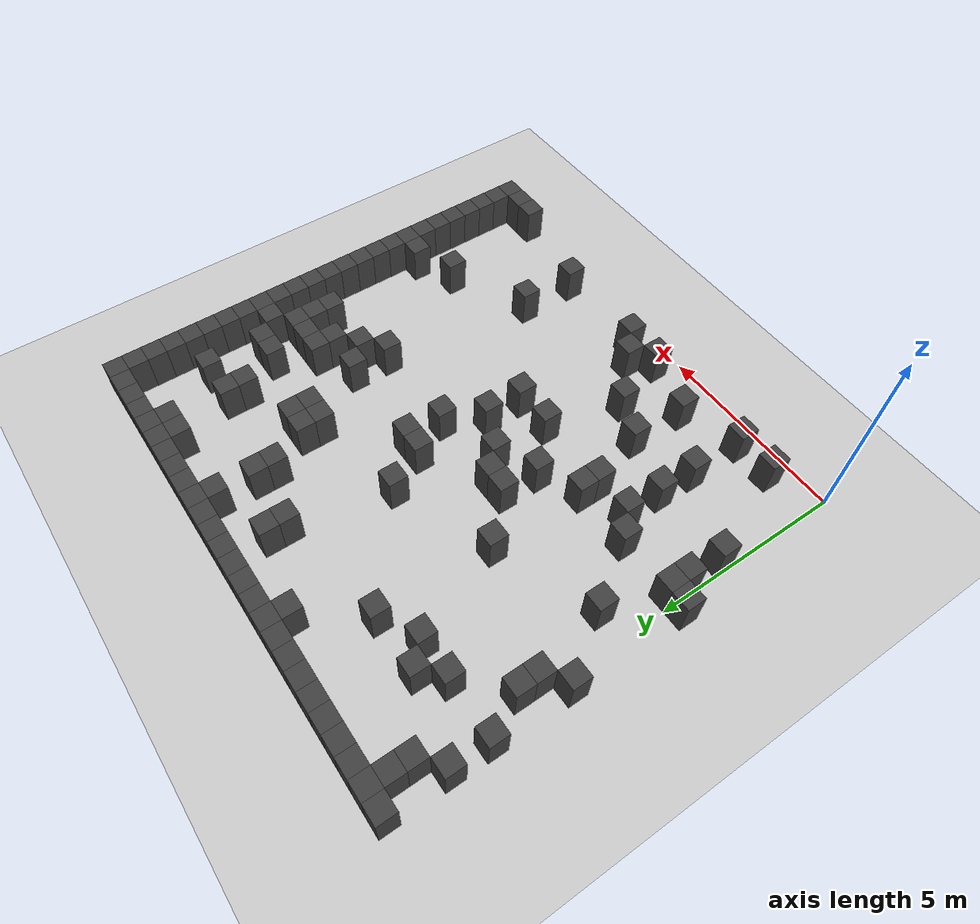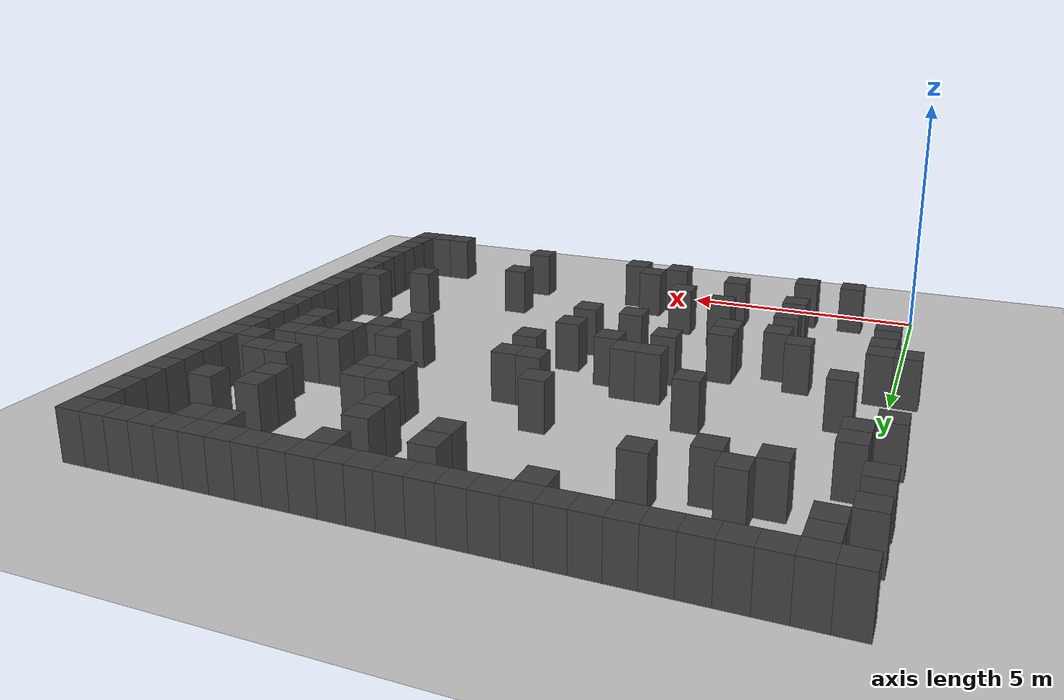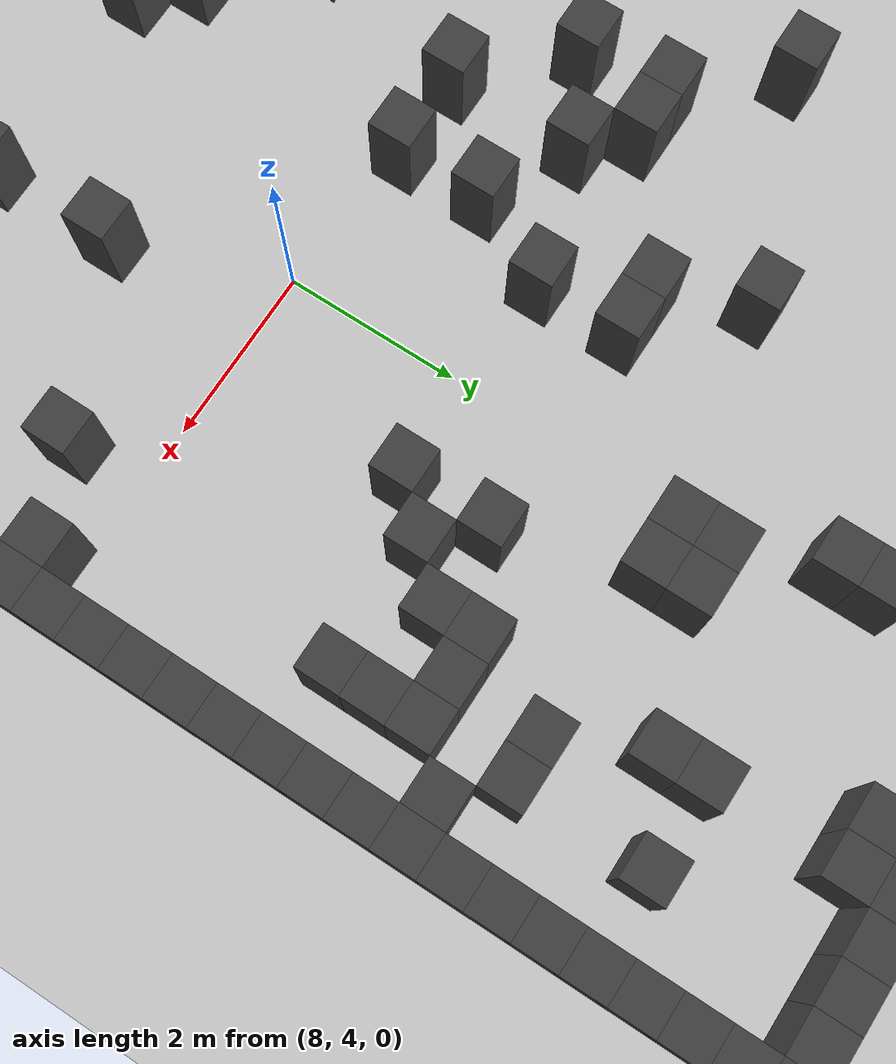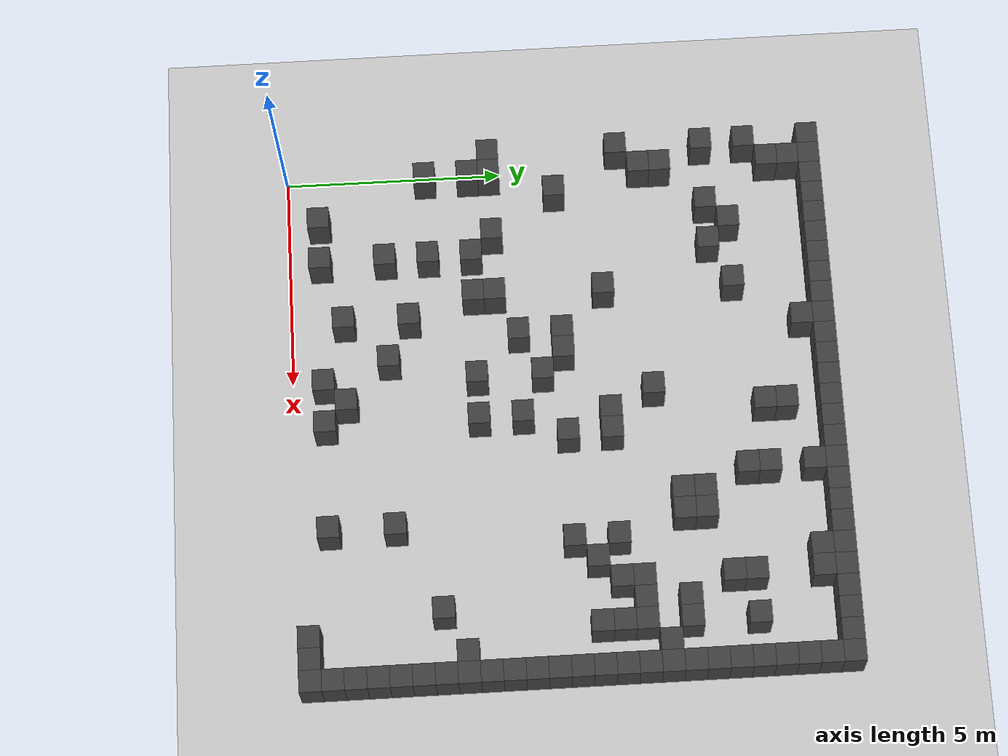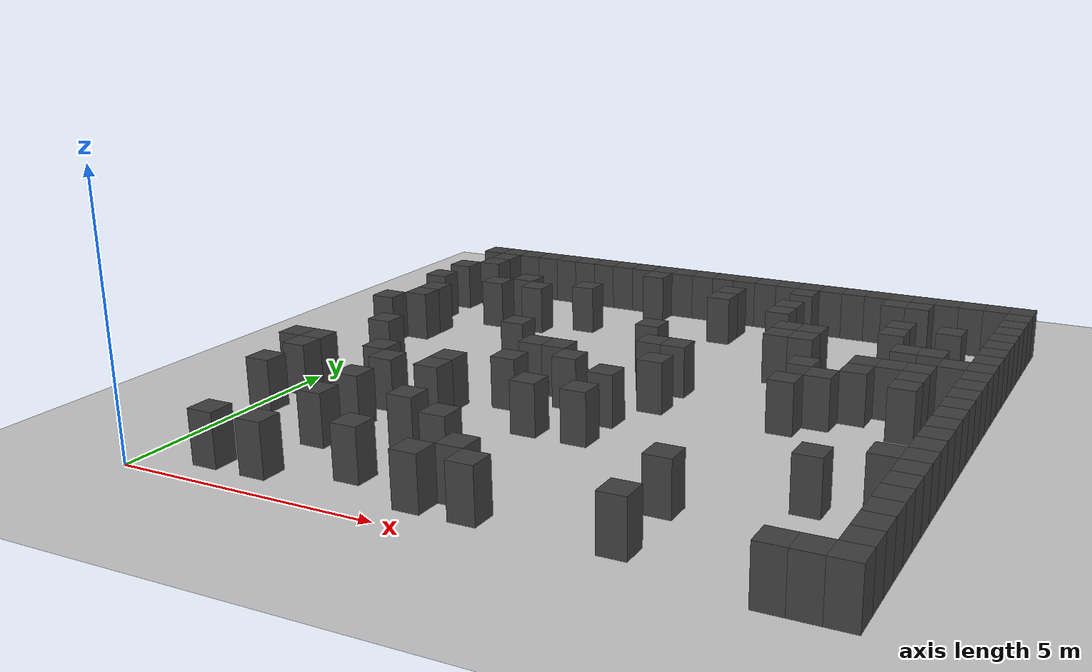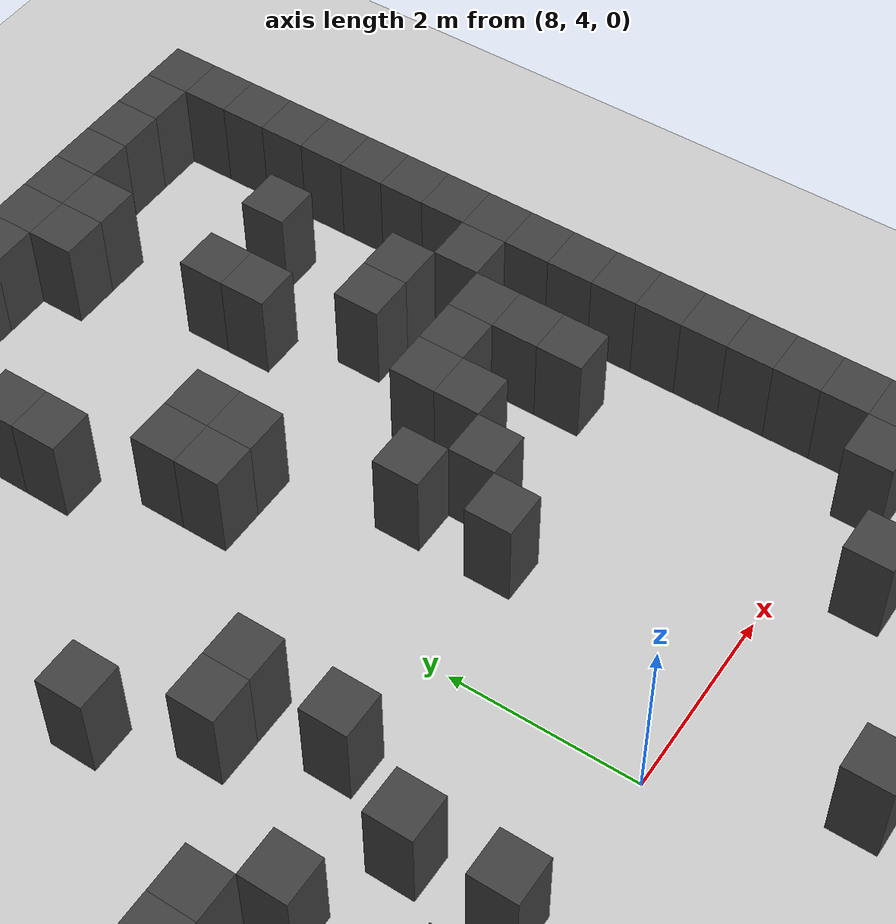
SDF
<sdf version="1.7">
 <world name="map_2523">
  <model name="ground_plane">
   <static>true</static>
   <link name="link">
    <collision name="collision">
     <geometry><plane><normal>0 0 1</normal><size>200 200</size></plane></geometry>
    </collision>
    <visual name="visual">
     <geometry><plane><normal>0 0 1</normal><size>200 200</size></plane></geometry>
     <material><ambient>0.8 0.8 0.8 1</ambient><diffuse>0.8 0.8 0.8 1</diffuse></material>
    </visual>
   </link>
  </model>
  <model name="maze_environment">
   <static>true</static>
   <link name="wall_24">
    <pose>-0.250 12.250 0.500 0 0 0</pose>
    <collision name="col"><geometry><box><size>0.5 0.5 1.0</size></box></geometry></collision>
    <visual name="vis">
     <geometry><box><size>0.5 0.5 1.0</size></box></geometry>
     <material><ambient>0.15 0.15 0.15 1</ambient><diffuse>0.25 0.25 0.25 1</diffuse></material>
    </visual>
   </link>
   <link name="wall_25">
    <pose>0.250 12.250 0.500 0 0 0</pose>
    <collision name="col"><geometry><box><size>0.5 0.5 1.0</size></box></geometry></collision>
    <visual name="vis">
     <geometry><box><size>0.5 0.5 1.0</size></box></geometry>
     <material><ambient>0.15 0.15 0.15 1</ambient><diffuse>0.25 0.25 0.25 1</diffuse></material>
    </visual>
   </link>
   <link name="wall_26">
    <pose>0.750 12.250 0.500 0 0 0</pose>
    <collision name="col"><geometry><box><size>0.5 0.5 1.0</size></box></geometry></collision>
    <visual name="vis">
     <geometry><box><size>0.5 0.5 1.0</size></box></geometry>
     <material><ambient>0.15 0.15 0.15 1</ambient><diffuse>0.25 0.25 0.25 1</diffuse></material>
    </visual>
   </link>
   <link name="wall_27">
    <pose>1.250 12.250 0.500 0 0 0</pose>
    <collision name="col"><geometry><box><size>0.5 0.5 1.0</size></box></geometry></collision>
    <visual name="vis">
     <geometry><box><size>0.5 0.5 1.0</size></box></geometry>
     <material><ambient>0.15 0.15 0.15 1</ambient><diffuse>0.25 0.25 0.25 1</diffuse></material>
    </visual>
   </link>
   <link name="wall_28">
    <pose>1.750 12.250 0.500 0 0 0</pose>
    <collision name="col"><geometry><box><size>0.5 0.5 1.0</size></box></geometry></collision>
    <visual name="vis">
     <geometry><box><size>0.5 0.5 1.0</size></box></geometry>
     <material><ambient>0.15 0.15 0.15 1</ambient><diffuse>0.25 0.25 0.25 1</diffuse></material>
    </visual>
   </link>
   <link name="wall_29">
    <pose>2.250 12.250 0.500 0 0 0</pose>
    <collision name="col"><geometry><box><size>0.5 0.5 1.0</size></box></geometry></collision>
    <visual name="vis">
     <geometry><box><size>0.5 0.5 1.0</size></box></geometry>
     <material><ambient>0.15 0.15 0.15 1</ambient><diffuse>0.25 0.25 0.25 1</diffuse></material>
    </visual>
   </link>
   <link name="wall_30">
    <pose>2.750 12.250 0.500 0 0 0</pose>
    <collision name="col"><geometry><box><size>0.5 0.5 1.0</size></box></geometry></collision>
    <visual name="vis">
     <geometry><box><size>0.5 0.5 1.0</size></box></geometry>
     <material><ambient>0.15 0.15 0.15 1</ambient><diffuse>0.25 0.25 0.25 1</diffuse></material>
    </visual>
   </link>
   <link name="wall_31">
    <pose>3.250 12.250 0.500 0 0 0</pose>
    <collision name="col"><geometry><box><size>0.5 0.5 1.0</size></box></geometry></collision>
    <visual name="vis">
     <geometry><box><size>0.5 0.5 1.0</size></box></geometry>
     <material><ambient>0.15 0.15 0.15 1</ambient><diffuse>0.25 0.25 0.25 1</diffuse></material>
    </visual>
   </link>
   <link name="wall_32">
    <pose>3.750 12.250 0.500 0 0 0</pose>
    <collision name="col"><geometry><box><size>0.5 0.5 1.0</size></box></geometry></collision>
    <visual name="vis">
     <geometry><box><size>0.5 0.5 1.0</size></box></geometry>
     <material><ambient>0.15 0.15 0.15 1</ambient><diffuse>0.25 0.25 0.25 1</diffuse></material>
    </visual>
   </link>
   <link name="wall_33">
    <pose>4.250 12.250 0.500 0 0 0</pose>
    <collision name="col"><geometry><box><size>0.5 0.5 1.0</size></box></geometry></collision>
    <visual name="vis">
     <geometry><box><size>0.5 0.5 1.0</size></box></geometry>
     <material><ambient>0.15 0.15 0.15 1</ambient><diffuse>0.25 0.25 0.25 1</diffuse></material>
    </visual>
   </link>
   <link name="wall_34">
    <pose>4.750 12.250 0.500 0 0 0</pose>
    <collision name="col"><geometry><box><size>0.5 0.5 1.0</size></box></geometry></collision>
    <visual name="vis">
     <geometry><box><size>0.5 0.5 1.0</size></box></geometry>
     <material><ambient>0.15 0.15 0.15 1</ambient><diffuse>0.25 0.25 0.25 1</diffuse></material>
    </visual>
   </link>
   <link name="wall_35">
    <pose>5.250 12.250 0.500 0 0 0</pose>
    <collision name="col"><geometry><box><size>0.5 0.5 1.0</size></box></geometry></collision>
    <visual name="vis">
     <geometry><box><size>0.5 0.5 1.0</size></box></geometry>
     <material><ambient>0.15 0.15 0.15 1</ambient><diffuse>0.25 0.25 0.25 1</diffuse></material>
    </visual>
   </link>
   <link name="wall_36">
    <pose>5.750 12.250 0.500 0 0 0</pose>
    <collision name="col"><geometry><box><size>0.5 0.5 1.0</size></box></geometry></collision>
    <visual name="vis">
     <geometry><box><size>0.5 0.5 1.0</size></box></geometry>
     <material><ambient>0.15 0.15 0.15 1</ambient><diffuse>0.25 0.25 0.25 1</diffuse></material>
    </visual>
   </link>
   <link name="wall_37">
    <pose>6.250 12.250 0.500 0 0 0</pose>
    <collision name="col"><geometry><box><size>0.5 0.5 1.0</size></box></geometry></collision>
    <visual name="vis">
     <geometry><box><size>0.5 0.5 1.0</size></box></geometry>
     <material><ambient>0.15 0.15 0.15 1</ambient><diffuse>0.25 0.25 0.25 1</diffuse></material>
    </visual>
   </link>
   <link name="wall_38">
    <pose>6.750 12.250 0.500 0 0 0</pose>
    <collision name="col"><geometry><box><size>0.5 0.5 1.0</size></box></geometry></collision>
    <visual name="vis">
     <geometry><box><size>0.5 0.5 1.0</size></box></geometry>
     <material><ambient>0.15 0.15 0.15 1</ambient><diffuse>0.25 0.25 0.25 1</diffuse></material>
    </visual>
   </link>
   <link name="wall_39">
    <pose>7.250 12.250 0.500 0 0 0</pose>
    <collision name="col"><geometry><box><size>0.5 0.5 1.0</size></box></geometry></collision>
    <visual name="vis">
     <geometry><box><size>0.5 0.5 1.0</size></box></geometry>
     <material><ambient>0.15 0.15 0.15 1</ambient><diffuse>0.25 0.25 0.25 1</diffuse></material>
    </visual>
   </link>
   <link name="wall_40">
    <pose>7.750 12.250 0.500 0 0 0</pose>
    <collision name="col"><geometry><box><size>0.5 0.5 1.0</size></box></geometry></collision>
    <visual name="vis">
     <geometry><box><size>0.5 0.5 1.0</size></box></geometry>
     <material><ambient>0.15 0.15 0.15 1</ambient><diffuse>0.25 0.25 0.25 1</diffuse></material>
    </visual>
   </link>
   <link name="wall_41">
    <pose>8.250 12.250 0.500 0 0 0</pose>
    <collision name="col"><geometry><box><size>0.5 0.5 1.0</size></box></geometry></collision>
    <visual name="vis">
     <geometry><box><size>0.5 0.5 1.0</size></box></geometry>
     <material><ambient>0.15 0.15 0.15 1</ambient><diffuse>0.25 0.25 0.25 1</diffuse></material>
    </visual>
   </link>
   <link name="wall_42">
    <pose>8.750 12.250 0.500 0 0 0</pose>
    <collision name="col"><geometry><box><size>0.5 0.5 1.0</size></box></geometry></collision>
    <visual name="vis">
     <geometry><box><size>0.5 0.5 1.0</size></box></geometry>
     <material><ambient>0.15 0.15 0.15 1</ambient><diffuse>0.25 0.25 0.25 1</diffuse></material>
    </visual>
   </link>
   <link name="wall_43">
    <pose>9.250 12.250 0.500 0 0 0</pose>
    <collision name="col"><geometry><box><size>0.5 0.5 1.0</size></box></geometry></collision>
    <visual name="vis">
     <geometry><box><size>0.5 0.5 1.0</size></box></geometry>
     <material><ambient>0.15 0.15 0.15 1</ambient><diffuse>0.25 0.25 0.25 1</diffuse></material>
    </visual>
   </link>
   <link name="wall_44">
    <pose>9.750 12.250 0.500 0 0 0</pose>
    <collision name="col"><geometry><box><size>0.5 0.5 1.0</size></box></geometry></collision>
    <visual name="vis">
     <geometry><box><size>0.5 0.5 1.0</size></box></geometry>
     <material><ambient>0.15 0.15 0.15 1</ambient><diffuse>0.25 0.25 0.25 1</diffuse></material>
    </visual>
   </link>
   <link name="wall_45">
    <pose>10.250 12.250 0.500 0 0 0</pose>
    <collision name="col"><geometry><box><size>0.5 0.5 1.0</size></box></geometry></collision>
    <visual name="vis">
     <geometry><box><size>0.5 0.5 1.0</size></box></geometry>
     <material><ambient>0.15 0.15 0.15 1</ambient><diffuse>0.25 0.25 0.25 1</diffuse></material>
    </visual>
   </link>
   <link name="wall_46">
    <pose>10.750 12.250 0.500 0 0 0</pose>
    <collision name="col"><geometry><box><size>0.5 0.5 1.0</size></box></geometry></collision>
    <visual name="vis">
     <geometry><box><size>0.5 0.5 1.0</size></box></geometry>
     <material><ambient>0.15 0.15 0.15 1</ambient><diffuse>0.25 0.25 0.25 1</diffuse></material>
    </visual>
   </link>
   <link name="wall_47">
    <pose>11.250 12.250 0.500 0 0 0</pose>
    <collision name="col"><geometry><box><size>0.5 0.5 1.0</size></box></geometry></collision>
    <visual name="vis">
     <geometry><box><size>0.5 0.5 1.0</size></box></geometry>
     <material><ambient>0.15 0.15 0.15 1</ambient><diffuse>0.25 0.25 0.25 1</diffuse></material>
    </visual>
   </link>
   <link name="wall_48">
    <pose>11.750 12.250 0.500 0 0 0</pose>
    <collision name="col"><geometry><box><size>0.5 0.5 1.0</size></box></geometry></collision>
    <visual name="vis">
     <geometry><box><size>0.5 0.5 1.0</size></box></geometry>
     <material><ambient>0.15 0.15 0.15 1</ambient><diffuse>0.25 0.25 0.25 1</diffuse></material>
    </visual>
   </link>
   <link name="wall_49">
    <pose>12.250 12.250 0.500 0 0 0</pose>
    <collision name="col"><geometry><box><size>0.5 0.5 1.0</size></box></geometry></collision>
    <visual name="vis">
     <geometry><box><size>0.5 0.5 1.0</size></box></geometry>
     <material><ambient>0.15 0.15 0.15 1</ambient><diffuse>0.25 0.25 0.25 1</diffuse></material>
    </visual>
   </link>
   <link name="wall_53">
    <pose>0.250 11.750 0.500 0 0 0</pose>
    <collision name="col"><geometry><box><size>0.5 0.5 1.0</size></box></geometry></collision>
    <visual name="vis">
     <geometry><box><size>0.5 0.5 1.0</size></box></geometry>
     <material><ambient>0.15 0.15 0.15 1</ambient><diffuse>0.25 0.25 0.25 1</diffuse></material>
    </visual>
   </link>
   <link name="wall_54">
    <pose>4.250 11.750 0.500 0 0 0</pose>
    <collision name="col"><geometry><box><size>0.5 0.5 1.0</size></box></geometry></collision>
    <visual name="vis">
     <geometry><box><size>0.5 0.5 1.0</size></box></geometry>
     <material><ambient>0.15 0.15 0.15 1</ambient><diffuse>0.25 0.25 0.25 1</diffuse></material>
    </visual>
   </link>
   <link name="wall_55">
    <pose>7.750 11.750 0.500 0 0 0</pose>
    <collision name="col"><geometry><box><size>0.5 0.5 1.0</size></box></geometry></collision>
    <visual name="vis">
     <geometry><box><size>0.5 0.5 1.0</size></box></geometry>
     <material><ambient>0.15 0.15 0.15 1</ambient><diffuse>0.25 0.25 0.25 1</diffuse></material>
    </visual>
   </link>
   <link name="wall_56">
    <pose>9.750 11.750 0.500 0 0 0</pose>
    <collision name="col"><geometry><box><size>0.5 0.5 1.0</size></box></geometry></collision>
    <visual name="vis">
     <geometry><box><size>0.5 0.5 1.0</size></box></geometry>
     <material><ambient>0.15 0.15 0.15 1</ambient><diffuse>0.25 0.25 0.25 1</diffuse></material>
    </visual>
   </link>
   <link name="wall_57">
    <pose>10.250 11.750 0.500 0 0 0</pose>
    <collision name="col"><geometry><box><size>0.5 0.5 1.0</size></box></geometry></collision>
    <visual name="vis">
     <geometry><box><size>0.5 0.5 1.0</size></box></geometry>
     <material><ambient>0.15 0.15 0.15 1</ambient><diffuse>0.25 0.25 0.25 1</diffuse></material>
    </visual>
   </link>
   <link name="wall_58">
    <pose>12.250 11.750 0.500 0 0 0</pose>
    <collision name="col"><geometry><box><size>0.5 0.5 1.0</size></box></geometry></collision>
    <visual name="vis">
     <geometry><box><size>0.5 0.5 1.0</size></box></geometry>
     <material><ambient>0.15 0.15 0.15 1</ambient><diffuse>0.25 0.25 0.25 1</diffuse></material>
    </visual>
   </link>
   <link name="wall_63">
    <pose>0.250 11.250 0.500 0 0 0</pose>
    <collision name="col"><geometry><box><size>0.5 0.5 1.0</size></box></geometry></collision>
    <visual name="vis">
     <geometry><box><size>0.5 0.5 1.0</size></box></geometry>
     <material><ambient>0.15 0.15 0.15 1</ambient><diffuse>0.25 0.25 0.25 1</diffuse></material>
    </visual>
   </link>
   <link name="wall_64">
    <pose>6.250 11.250 0.500 0 0 0</pose>
    <collision name="col"><geometry><box><size>0.5 0.5 1.0</size></box></geometry></collision>
    <visual name="vis">
     <geometry><box><size>0.5 0.5 1.0</size></box></geometry>
     <material><ambient>0.15 0.15 0.15 1</ambient><diffuse>0.25 0.25 0.25 1</diffuse></material>
    </visual>
   </link>
   <link name="wall_65">
    <pose>12.250 11.250 0.500 0 0 0</pose>
    <collision name="col"><geometry><box><size>0.5 0.5 1.0</size></box></geometry></collision>
    <visual name="vis">
     <geometry><box><size>0.5 0.5 1.0</size></box></geometry>
     <material><ambient>0.15 0.15 0.15 1</ambient><diffuse>0.25 0.25 0.25 1</diffuse></material>
    </visual>
   </link>
   <link name="wall_70">
    <pose>-0.250 10.750 0.500 0 0 0</pose>
    <collision name="col"><geometry><box><size>0.5 0.5 1.0</size></box></geometry></collision>
    <visual name="vis">
     <geometry><box><size>0.5 0.5 1.0</size></box></geometry>
     <material><ambient>0.15 0.15 0.15 1</ambient><diffuse>0.25 0.25 0.25 1</diffuse></material>
    </visual>
   </link>
   <link name="wall_71">
    <pose>6.250 10.750 0.500 0 0 0</pose>
    <collision name="col"><geometry><box><size>0.5 0.5 1.0</size></box></geometry></collision>
    <visual name="vis">
     <geometry><box><size>0.5 0.5 1.0</size></box></geometry>
     <material><ambient>0.15 0.15 0.15 1</ambient><diffuse>0.25 0.25 0.25 1</diffuse></material>
    </visual>
   </link>
   <link name="wall_72">
    <pose>7.750 10.750 0.500 0 0 0</pose>
    <collision name="col"><geometry><box><size>0.5 0.5 1.0</size></box></geometry></collision>
    <visual name="vis">
     <geometry><box><size>0.5 0.5 1.0</size></box></geometry>
     <material><ambient>0.15 0.15 0.15 1</ambient><diffuse>0.25 0.25 0.25 1</diffuse></material>
    </visual>
   </link>
   <link name="wall_73">
    <pose>12.250 10.750 0.500 0 0 0</pose>
    <collision name="col"><geometry><box><size>0.5 0.5 1.0</size></box></geometry></collision>
    <visual name="vis">
     <geometry><box><size>0.5 0.5 1.0</size></box></geometry>
     <material><ambient>0.15 0.15 0.15 1</ambient><diffuse>0.25 0.25 0.25 1</diffuse></material>
    </visual>
   </link>
   <link name="wall_76">
    <pose>1.750 10.250 0.500 0 0 0</pose>
    <collision name="col"><geometry><box><size>0.5 0.5 1.0</size></box></geometry></collision>
    <visual name="vis">
     <geometry><box><size>0.5 0.5 1.0</size></box></geometry>
     <material><ambient>0.15 0.15 0.15 1</ambient><diffuse>0.25 0.25 0.25 1</diffuse></material>
    </visual>
   </link>
   <link name="wall_77">
    <pose>3.250 10.250 0.500 0 0 0</pose>
    <collision name="col"><geometry><box><size>0.5 0.5 1.0</size></box></geometry></collision>
    <visual name="vis">
     <geometry><box><size>0.5 0.5 1.0</size></box></geometry>
     <material><ambient>0.15 0.15 0.15 1</ambient><diffuse>0.25 0.25 0.25 1</diffuse></material>
    </visual>
   </link>
   <link name="wall_78">
    <pose>7.750 10.250 0.500 0 0 0</pose>
    <collision name="col"><geometry><box><size>0.5 0.5 1.0</size></box></geometry></collision>
    <visual name="vis">
     <geometry><box><size>0.5 0.5 1.0</size></box></geometry>
     <material><ambient>0.15 0.15 0.15 1</ambient><diffuse>0.25 0.25 0.25 1</diffuse></material>
    </visual>
   </link>
   <link name="wall_79">
    <pose>10.250 10.250 0.500 0 0 0</pose>
    <collision name="col"><geometry><box><size>0.5 0.5 1.0</size></box></geometry></collision>
    <visual name="vis">
     <geometry><box><size>0.5 0.5 1.0</size></box></geometry>
     <material><ambient>0.15 0.15 0.15 1</ambient><diffuse>0.25 0.25 0.25 1</diffuse></material>
    </visual>
   </link>
   <link name="wall_80">
    <pose>11.250 10.250 0.500 0 0 0</pose>
    <collision name="col"><geometry><box><size>0.5 0.5 1.0</size></box></geometry></collision>
    <visual name="vis">
     <geometry><box><size>0.5 0.5 1.0</size></box></geometry>
     <material><ambient>0.15 0.15 0.15 1</ambient><diffuse>0.25 0.25 0.25 1</diffuse></material>
    </visual>
   </link>
   <link name="wall_81">
    <pose>12.250 10.250 0.500 0 0 0</pose>
    <collision name="col"><geometry><box><size>0.5 0.5 1.0</size></box></geometry></collision>
    <visual name="vis">
     <geometry><box><size>0.5 0.5 1.0</size></box></geometry>
     <material><ambient>0.15 0.15 0.15 1</ambient><diffuse>0.25 0.25 0.25 1</diffuse></material>
    </visual>
   </link>
   <link name="wall_86">
    <pose>-0.250 9.750 0.500 0 0 0</pose>
    <collision name="col"><geometry><box><size>0.5 0.5 1.0</size></box></geometry></collision>
    <visual name="vis">
     <geometry><box><size>0.5 0.5 1.0</size></box></geometry>
     <material><ambient>0.15 0.15 0.15 1</ambient><diffuse>0.25 0.25 0.25 1</diffuse></material>
    </visual>
   </link>
   <link name="wall_87">
    <pose>1.250 9.750 0.500 0 0 0</pose>
    <collision name="col"><geometry><box><size>0.5 0.5 1.0</size></box></geometry></collision>
    <visual name="vis">
     <geometry><box><size>0.5 0.5 1.0</size></box></geometry>
     <material><ambient>0.15 0.15 0.15 1</ambient><diffuse>0.25 0.25 0.25 1</diffuse></material>
    </visual>
   </link>
   <link name="wall_88">
    <pose>2.250 9.750 0.500 0 0 0</pose>
    <collision name="col"><geometry><box><size>0.5 0.5 1.0</size></box></geometry></collision>
    <visual name="vis">
     <geometry><box><size>0.5 0.5 1.0</size></box></geometry>
     <material><ambient>0.15 0.15 0.15 1</ambient><diffuse>0.25 0.25 0.25 1</diffuse></material>
    </visual>
   </link>
   <link name="wall_89">
    <pose>10.250 9.750 0.500 0 0 0</pose>
    <collision name="col"><geometry><box><size>0.5 0.5 1.0</size></box></geometry></collision>
    <visual name="vis">
     <geometry><box><size>0.5 0.5 1.0</size></box></geometry>
     <material><ambient>0.15 0.15 0.15 1</ambient><diffuse>0.25 0.25 0.25 1</diffuse></material>
    </visual>
   </link>
   <link name="wall_90">
    <pose>12.250 9.750 0.500 0 0 0</pose>
    <collision name="col"><geometry><box><size>0.5 0.5 1.0</size></box></geometry></collision>
    <visual name="vis">
     <geometry><box><size>0.5 0.5 1.0</size></box></geometry>
     <material><ambient>0.15 0.15 0.15 1</ambient><diffuse>0.25 0.25 0.25 1</diffuse></material>
    </visual>
   </link>
   <link name="wall_98">
    <pose>8.250 9.250 0.500 0 0 0</pose>
    <collision name="col"><geometry><box><size>0.5 0.5 1.0</size></box></geometry></collision>
    <visual name="vis">
     <geometry><box><size>0.5 0.5 1.0</size></box></geometry>
     <material><ambient>0.15 0.15 0.15 1</ambient><diffuse>0.25 0.25 0.25 1</diffuse></material>
    </visual>
   </link>
   <link name="wall_99">
    <pose>8.750 9.250 0.500 0 0 0</pose>
    <collision name="col"><geometry><box><size>0.5 0.5 1.0</size></box></geometry></collision>
    <visual name="vis">
     <geometry><box><size>0.5 0.5 1.0</size></box></geometry>
     <material><ambient>0.15 0.15 0.15 1</ambient><diffuse>0.25 0.25 0.25 1</diffuse></material>
    </visual>
   </link>
   <link name="wall_100">
    <pose>12.250 9.250 0.500 0 0 0</pose>
    <collision name="col"><geometry><box><size>0.5 0.5 1.0</size></box></geometry></collision>
    <visual name="vis">
     <geometry><box><size>0.5 0.5 1.0</size></box></geometry>
     <material><ambient>0.15 0.15 0.15 1</ambient><diffuse>0.25 0.25 0.25 1</diffuse></material>
    </visual>
   </link>
   <link name="wall_105">
    <pose>0.250 8.750 0.500 0 0 0</pose>
    <collision name="col"><geometry><box><size>0.5 0.5 1.0</size></box></geometry></collision>
    <visual name="vis">
     <geometry><box><size>0.5 0.5 1.0</size></box></geometry>
     <material><ambient>0.15 0.15 0.15 1</ambient><diffuse>0.25 0.25 0.25 1</diffuse></material>
    </visual>
   </link>
   <link name="wall_106">
    <pose>8.250 8.750 0.500 0 0 0</pose>
    <collision name="col"><geometry><box><size>0.5 0.5 1.0</size></box></geometry></collision>
    <visual name="vis">
     <geometry><box><size>0.5 0.5 1.0</size></box></geometry>
     <material><ambient>0.15 0.15 0.15 1</ambient><diffuse>0.25 0.25 0.25 1</diffuse></material>
    </visual>
   </link>
   <link name="wall_107">
    <pose>8.750 8.750 0.500 0 0 0</pose>
    <collision name="col"><geometry><box><size>0.5 0.5 1.0</size></box></geometry></collision>
    <visual name="vis">
     <geometry><box><size>0.5 0.5 1.0</size></box></geometry>
     <material><ambient>0.15 0.15 0.15 1</ambient><diffuse>0.25 0.25 0.25 1</diffuse></material>
    </visual>
   </link>
   <link name="wall_108">
    <pose>10.750 8.750 0.500 0 0 0</pose>
    <collision name="col"><geometry><box><size>0.5 0.5 1.0</size></box></geometry></collision>
    <visual name="vis">
     <geometry><box><size>0.5 0.5 1.0</size></box></geometry>
     <material><ambient>0.15 0.15 0.15 1</ambient><diffuse>0.25 0.25 0.25 1</diffuse></material>
    </visual>
   </link>
   <link name="wall_109">
    <pose>11.250 8.750 0.500 0 0 0</pose>
    <collision name="col"><geometry><box><size>0.5 0.5 1.0</size></box></geometry></collision>
    <visual name="vis">
     <geometry><box><size>0.5 0.5 1.0</size></box></geometry>
     <material><ambient>0.15 0.15 0.15 1</ambient><diffuse>0.25 0.25 0.25 1</diffuse></material>
    </visual>
   </link>
   <link name="wall_110">
    <pose>12.250 8.750 0.500 0 0 0</pose>
    <collision name="col"><geometry><box><size>0.5 0.5 1.0</size></box></geometry></collision>
    <visual name="vis">
     <geometry><box><size>0.5 0.5 1.0</size></box></geometry>
     <material><ambient>0.15 0.15 0.15 1</ambient><diffuse>0.25 0.25 0.25 1</diffuse></material>
    </visual>
   </link>
   <link name="wall_114">
    <pose>0.250 8.250 0.500 0 0 0</pose>
    <collision name="col"><geometry><box><size>0.5 0.5 1.0</size></box></geometry></collision>
    <visual name="vis">
     <geometry><box><size>0.5 0.5 1.0</size></box></geometry>
     <material><ambient>0.15 0.15 0.15 1</ambient><diffuse>0.25 0.25 0.25 1</diffuse></material>
    </visual>
   </link>
   <link name="wall_115">
    <pose>5.750 8.250 0.500 0 0 0</pose>
    <collision name="col"><geometry><box><size>0.5 0.5 1.0</size></box></geometry></collision>
    <visual name="vis">
     <geometry><box><size>0.5 0.5 1.0</size></box></geometry>
     <material><ambient>0.15 0.15 0.15 1</ambient><diffuse>0.25 0.25 0.25 1</diffuse></material>
    </visual>
   </link>
   <link name="wall_116">
    <pose>11.750 8.250 0.500 0 0 0</pose>
    <collision name="col"><geometry><box><size>0.5 0.5 1.0</size></box></geometry></collision>
    <visual name="vis">
     <geometry><box><size>0.5 0.5 1.0</size></box></geometry>
     <material><ambient>0.15 0.15 0.15 1</ambient><diffuse>0.25 0.25 0.25 1</diffuse></material>
    </visual>
   </link>
   <link name="wall_117">
    <pose>12.250 8.250 0.500 0 0 0</pose>
    <collision name="col"><geometry><box><size>0.5 0.5 1.0</size></box></geometry></collision>
    <visual name="vis">
     <geometry><box><size>0.5 0.5 1.0</size></box></geometry>
     <material><ambient>0.15 0.15 0.15 1</ambient><diffuse>0.25 0.25 0.25 1</diffuse></material>
    </visual>
   </link>
   <link name="wall_124">
    <pose>-0.250 7.750 0.500 0 0 0</pose>
    <collision name="col"><geometry><box><size>0.5 0.5 1.0</size></box></geometry></collision>
    <visual name="vis">
     <geometry><box><size>0.5 0.5 1.0</size></box></geometry>
     <material><ambient>0.15 0.15 0.15 1</ambient><diffuse>0.25 0.25 0.25 1</diffuse></material>
    </visual>
   </link>
   <link name="wall_125">
    <pose>10.250 7.750 0.500 0 0 0</pose>
    <collision name="col"><geometry><box><size>0.5 0.5 1.0</size></box></geometry></collision>
    <visual name="vis">
     <geometry><box><size>0.5 0.5 1.0</size></box></geometry>
     <material><ambient>0.15 0.15 0.15 1</ambient><diffuse>0.25 0.25 0.25 1</diffuse></material>
    </visual>
   </link>
   <link name="wall_126">
    <pose>10.750 7.750 0.500 0 0 0</pose>
    <collision name="col"><geometry><box><size>0.5 0.5 1.0</size></box></geometry></collision>
    <visual name="vis">
     <geometry><box><size>0.5 0.5 1.0</size></box></geometry>
     <material><ambient>0.15 0.15 0.15 1</ambient><diffuse>0.25 0.25 0.25 1</diffuse></material>
    </visual>
   </link>
   <link name="wall_127">
    <pose>11.250 7.750 0.500 0 0 0</pose>
    <collision name="col"><geometry><box><size>0.5 0.5 1.0</size></box></geometry></collision>
    <visual name="vis">
     <geometry><box><size>0.5 0.5 1.0</size></box></geometry>
     <material><ambient>0.15 0.15 0.15 1</ambient><diffuse>0.25 0.25 0.25 1</diffuse></material>
    </visual>
   </link>
   <link name="wall_128">
    <pose>12.250 7.750 0.500 0 0 0</pose>
    <collision name="col"><geometry><box><size>0.5 0.5 1.0</size></box></geometry></collision>
    <visual name="vis">
     <geometry><box><size>0.5 0.5 1.0</size></box></geometry>
     <material><ambient>0.15 0.15 0.15 1</ambient><diffuse>0.25 0.25 0.25 1</diffuse></material>
    </visual>
   </link>
   <link name="wall_131">
    <pose>3.250 7.250 0.500 0 0 0</pose>
    <collision name="col"><geometry><box><size>0.5 0.5 1.0</size></box></geometry></collision>
    <visual name="vis">
     <geometry><box><size>0.5 0.5 1.0</size></box></geometry>
     <material><ambient>0.15 0.15 0.15 1</ambient><diffuse>0.25 0.25 0.25 1</diffuse></material>
    </visual>
   </link>
   <link name="wall_132">
    <pose>6.250 7.250 0.500 0 0 0</pose>
    <collision name="col"><geometry><box><size>0.5 0.5 1.0</size></box></geometry></collision>
    <visual name="vis">
     <geometry><box><size>0.5 0.5 1.0</size></box></geometry>
     <material><ambient>0.15 0.15 0.15 1</ambient><diffuse>0.25 0.25 0.25 1</diffuse></material>
    </visual>
   </link>
   <link name="wall_133">
    <pose>6.750 7.250 0.500 0 0 0</pose>
    <collision name="col"><geometry><box><size>0.5 0.5 1.0</size></box></geometry></collision>
    <visual name="vis">
     <geometry><box><size>0.5 0.5 1.0</size></box></geometry>
     <material><ambient>0.15 0.15 0.15 1</ambient><diffuse>0.25 0.25 0.25 1</diffuse></material>
    </visual>
   </link>
   <link name="wall_134">
    <pose>9.250 7.250 0.500 0 0 0</pose>
    <collision name="col"><geometry><box><size>0.5 0.5 1.0</size></box></geometry></collision>
    <visual name="vis">
     <geometry><box><size>0.5 0.5 1.0</size></box></geometry>
     <material><ambient>0.15 0.15 0.15 1</ambient><diffuse>0.25 0.25 0.25 1</diffuse></material>
    </visual>
   </link>
   <link name="wall_135">
    <pose>10.250 7.250 0.500 0 0 0</pose>
    <collision name="col"><geometry><box><size>0.5 0.5 1.0</size></box></geometry></collision>
    <visual name="vis">
     <geometry><box><size>0.5 0.5 1.0</size></box></geometry>
     <material><ambient>0.15 0.15 0.15 1</ambient><diffuse>0.25 0.25 0.25 1</diffuse></material>
    </visual>
   </link>
   <link name="wall_136">
    <pose>11.250 7.250 0.500 0 0 0</pose>
    <collision name="col"><geometry><box><size>0.5 0.5 1.0</size></box></geometry></collision>
    <visual name="vis">
     <geometry><box><size>0.5 0.5 1.0</size></box></geometry>
     <material><ambient>0.15 0.15 0.15 1</ambient><diffuse>0.25 0.25 0.25 1</diffuse></material>
    </visual>
   </link>
   <link name="wall_137">
    <pose>12.250 7.250 0.500 0 0 0</pose>
    <collision name="col"><geometry><box><size>0.5 0.5 1.0</size></box></geometry></collision>
    <visual name="vis">
     <geometry><box><size>0.5 0.5 1.0</size></box></geometry>
     <material><ambient>0.15 0.15 0.15 1</ambient><diffuse>0.25 0.25 0.25 1</diffuse></material>
    </visual>
   </link>
   <link name="wall_142">
    <pose>9.750 6.750 0.500 0 0 0</pose>
    <collision name="col"><geometry><box><size>0.5 0.5 1.0</size></box></geometry></collision>
    <visual name="vis">
     <geometry><box><size>0.5 0.5 1.0</size></box></geometry>
     <material><ambient>0.15 0.15 0.15 1</ambient><diffuse>0.25 0.25 0.25 1</diffuse></material>
    </visual>
   </link>
   <link name="wall_143">
    <pose>11.250 6.750 0.500 0 0 0</pose>
    <collision name="col"><geometry><box><size>0.5 0.5 1.0</size></box></geometry></collision>
    <visual name="vis">
     <geometry><box><size>0.5 0.5 1.0</size></box></geometry>
     <material><ambient>0.15 0.15 0.15 1</ambient><diffuse>0.25 0.25 0.25 1</diffuse></material>
    </visual>
   </link>
   <link name="wall_144">
    <pose>12.250 6.750 0.500 0 0 0</pose>
    <collision name="col"><geometry><box><size>0.5 0.5 1.0</size></box></geometry></collision>
    <visual name="vis">
     <geometry><box><size>0.5 0.5 1.0</size></box></geometry>
     <material><ambient>0.15 0.15 0.15 1</ambient><diffuse>0.25 0.25 0.25 1</diffuse></material>
    </visual>
   </link>
   <link name="wall_147">
    <pose>0.750 6.250 0.500 0 0 0</pose>
    <collision name="col"><geometry><box><size>0.5 0.5 1.0</size></box></geometry></collision>
    <visual name="vis">
     <geometry><box><size>0.5 0.5 1.0</size></box></geometry>
     <material><ambient>0.15 0.15 0.15 1</ambient><diffuse>0.25 0.25 0.25 1</diffuse></material>
    </visual>
   </link>
   <link name="wall_148">
    <pose>4.250 6.250 0.500 0 0 0</pose>
    <collision name="col"><geometry><box><size>0.5 0.5 1.0</size></box></geometry></collision>
    <visual name="vis">
     <geometry><box><size>0.5 0.5 1.0</size></box></geometry>
     <material><ambient>0.15 0.15 0.15 1</ambient><diffuse>0.25 0.25 0.25 1</diffuse></material>
    </visual>
   </link>
   <link name="wall_149">
    <pose>4.750 6.250 0.500 0 0 0</pose>
    <collision name="col"><geometry><box><size>0.5 0.5 1.0</size></box></geometry></collision>
    <visual name="vis">
     <geometry><box><size>0.5 0.5 1.0</size></box></geometry>
     <material><ambient>0.15 0.15 0.15 1</ambient><diffuse>0.25 0.25 0.25 1</diffuse></material>
    </visual>
   </link>
   <link name="wall_150">
    <pose>6.750 6.250 0.500 0 0 0</pose>
    <collision name="col"><geometry><box><size>0.5 0.5 1.0</size></box></geometry></collision>
    <visual name="vis">
     <geometry><box><size>0.5 0.5 1.0</size></box></geometry>
     <material><ambient>0.15 0.15 0.15 1</ambient><diffuse>0.25 0.25 0.25 1</diffuse></material>
    </visual>
   </link>
   <link name="wall_151">
    <pose>9.250 6.250 0.500 0 0 0</pose>
    <collision name="col"><geometry><box><size>0.5 0.5 1.0</size></box></geometry></collision>
    <visual name="vis">
     <geometry><box><size>0.5 0.5 1.0</size></box></geometry>
     <material><ambient>0.15 0.15 0.15 1</ambient><diffuse>0.25 0.25 0.25 1</diffuse></material>
    </visual>
   </link>
   <link name="wall_152">
    <pose>12.250 6.250 0.500 0 0 0</pose>
    <collision name="col"><geometry><box><size>0.5 0.5 1.0</size></box></geometry></collision>
    <visual name="vis">
     <geometry><box><size>0.5 0.5 1.0</size></box></geometry>
     <material><ambient>0.15 0.15 0.15 1</ambient><diffuse>0.25 0.25 0.25 1</diffuse></material>
    </visual>
   </link>
   <link name="wall_157">
    <pose>5.250 5.750 0.500 0 0 0</pose>
    <collision name="col"><geometry><box><size>0.5 0.5 1.0</size></box></geometry></collision>
    <visual name="vis">
     <geometry><box><size>0.5 0.5 1.0</size></box></geometry>
     <material><ambient>0.15 0.15 0.15 1</ambient><diffuse>0.25 0.25 0.25 1</diffuse></material>
    </visual>
   </link>
   <link name="wall_158">
    <pose>12.250 5.750 0.500 0 0 0</pose>
    <collision name="col"><geometry><box><size>0.5 0.5 1.0</size></box></geometry></collision>
    <visual name="vis">
     <geometry><box><size>0.5 0.5 1.0</size></box></geometry>
     <material><ambient>0.15 0.15 0.15 1</ambient><diffuse>0.25 0.25 0.25 1</diffuse></material>
    </visual>
   </link>
   <link name="wall_167">
    <pose>4.250 5.250 0.500 0 0 0</pose>
    <collision name="col"><geometry><box><size>0.5 0.5 1.0</size></box></geometry></collision>
    <visual name="vis">
     <geometry><box><size>0.5 0.5 1.0</size></box></geometry>
     <material><ambient>0.15 0.15 0.15 1</ambient><diffuse>0.25 0.25 0.25 1</diffuse></material>
    </visual>
   </link>
   <link name="wall_168">
    <pose>6.250 5.250 0.500 0 0 0</pose>
    <collision name="col"><geometry><box><size>0.5 0.5 1.0</size></box></geometry></collision>
    <visual name="vis">
     <geometry><box><size>0.5 0.5 1.0</size></box></geometry>
     <material><ambient>0.15 0.15 0.15 1</ambient><diffuse>0.25 0.25 0.25 1</diffuse></material>
    </visual>
   </link>
   <link name="wall_169">
    <pose>12.250 5.250 0.500 0 0 0</pose>
    <collision name="col"><geometry><box><size>0.5 0.5 1.0</size></box></geometry></collision>
    <visual name="vis">
     <geometry><box><size>0.5 0.5 1.0</size></box></geometry>
     <material><ambient>0.15 0.15 0.15 1</ambient><diffuse>0.25 0.25 0.25 1</diffuse></material>
    </visual>
   </link>
   <link name="wall_176">
    <pose>-0.250 4.750 0.500 0 0 0</pose>
    <collision name="col"><geometry><box><size>0.5 0.5 1.0</size></box></geometry></collision>
    <visual name="vis">
     <geometry><box><size>0.5 0.5 1.0</size></box></geometry>
     <material><ambient>0.15 0.15 0.15 1</ambient><diffuse>0.25 0.25 0.25 1</diffuse></material>
    </visual>
   </link>
   <link name="wall_177">
    <pose>0.250 4.750 0.500 0 0 0</pose>
    <collision name="col"><geometry><box><size>0.5 0.5 1.0</size></box></geometry></collision>
    <visual name="vis">
     <geometry><box><size>0.5 0.5 1.0</size></box></geometry>
     <material><ambient>0.15 0.15 0.15 1</ambient><diffuse>0.25 0.25 0.25 1</diffuse></material>
    </visual>
   </link>
   <link name="wall_178">
    <pose>1.750 4.750 0.500 0 0 0</pose>
    <collision name="col"><geometry><box><size>0.5 0.5 1.0</size></box></geometry></collision>
    <visual name="vis">
     <geometry><box><size>0.5 0.5 1.0</size></box></geometry>
     <material><ambient>0.15 0.15 0.15 1</ambient><diffuse>0.25 0.25 0.25 1</diffuse></material>
    </visual>
   </link>
   <link name="wall_179">
    <pose>3.250 4.750 0.500 0 0 0</pose>
    <collision name="col"><geometry><box><size>0.5 0.5 1.0</size></box></geometry></collision>
    <visual name="vis">
     <geometry><box><size>0.5 0.5 1.0</size></box></geometry>
     <material><ambient>0.15 0.15 0.15 1</ambient><diffuse>0.25 0.25 0.25 1</diffuse></material>
    </visual>
   </link>
   <link name="wall_180">
    <pose>12.250 4.750 0.500 0 0 0</pose>
    <collision name="col"><geometry><box><size>0.5 0.5 1.0</size></box></geometry></collision>
    <visual name="vis">
     <geometry><box><size>0.5 0.5 1.0</size></box></geometry>
     <material><ambient>0.15 0.15 0.15 1</ambient><diffuse>0.25 0.25 0.25 1</diffuse></material>
    </visual>
   </link>
   <link name="wall_189">
    <pose>0.250 4.250 0.500 0 0 0</pose>
    <collision name="col"><geometry><box><size>0.5 0.5 1.0</size></box></geometry></collision>
    <visual name="vis">
     <geometry><box><size>0.5 0.5 1.0</size></box></geometry>
     <material><ambient>0.15 0.15 0.15 1</ambient><diffuse>0.25 0.25 0.25 1</diffuse></material>
    </visual>
   </link>
   <link name="wall_190">
    <pose>2.250 4.250 0.500 0 0 0</pose>
    <collision name="col"><geometry><box><size>0.5 0.5 1.0</size></box></geometry></collision>
    <visual name="vis">
     <geometry><box><size>0.5 0.5 1.0</size></box></geometry>
     <material><ambient>0.15 0.15 0.15 1</ambient><diffuse>0.25 0.25 0.25 1</diffuse></material>
    </visual>
   </link>
   <link name="wall_191">
    <pose>3.250 4.250 0.500 0 0 0</pose>
    <collision name="col"><geometry><box><size>0.5 0.5 1.0</size></box></geometry></collision>
    <visual name="vis">
     <geometry><box><size>0.5 0.5 1.0</size></box></geometry>
     <material><ambient>0.15 0.15 0.15 1</ambient><diffuse>0.25 0.25 0.25 1</diffuse></material>
    </visual>
   </link>
   <link name="wall_192">
    <pose>5.250 4.250 0.500 0 0 0</pose>
    <collision name="col"><geometry><box><size>0.5 0.5 1.0</size></box></geometry></collision>
    <visual name="vis">
     <geometry><box><size>0.5 0.5 1.0</size></box></geometry>
     <material><ambient>0.15 0.15 0.15 1</ambient><diffuse>0.25 0.25 0.25 1</diffuse></material>
    </visual>
   </link>
   <link name="wall_193">
    <pose>6.250 4.250 0.500 0 0 0</pose>
    <collision name="col"><geometry><box><size>0.5 0.5 1.0</size></box></geometry></collision>
    <visual name="vis">
     <geometry><box><size>0.5 0.5 1.0</size></box></geometry>
     <material><ambient>0.15 0.15 0.15 1</ambient><diffuse>0.25 0.25 0.25 1</diffuse></material>
    </visual>
   </link>
   <link name="wall_194">
    <pose>12.250 4.250 0.500 0 0 0</pose>
    <collision name="col"><geometry><box><size>0.5 0.5 1.0</size></box></geometry></collision>
    <visual name="vis">
     <geometry><box><size>0.5 0.5 1.0</size></box></geometry>
     <material><ambient>0.15 0.15 0.15 1</ambient><diffuse>0.25 0.25 0.25 1</diffuse></material>
    </visual>
   </link>
   <link name="wall_198">
    <pose>11.750 3.750 0.500 0 0 0</pose>
    <collision name="col"><geometry><box><size>0.5 0.5 1.0</size></box></geometry></collision>
    <visual name="vis">
     <geometry><box><size>0.5 0.5 1.0</size></box></geometry>
     <material><ambient>0.15 0.15 0.15 1</ambient><diffuse>0.25 0.25 0.25 1</diffuse></material>
    </visual>
   </link>
   <link name="wall_199">
    <pose>12.250 3.750 0.500 0 0 0</pose>
    <collision name="col"><geometry><box><size>0.5 0.5 1.0</size></box></geometry></collision>
    <visual name="vis">
     <geometry><box><size>0.5 0.5 1.0</size></box></geometry>
     <material><ambient>0.15 0.15 0.15 1</ambient><diffuse>0.25 0.25 0.25 1</diffuse></material>
    </visual>
   </link>
   <link name="wall_205">
    <pose>0.250 3.250 0.500 0 0 0</pose>
    <collision name="col"><geometry><box><size>0.5 0.5 1.0</size></box></geometry></collision>
    <visual name="vis">
     <geometry><box><size>0.5 0.5 1.0</size></box></geometry>
     <material><ambient>0.15 0.15 0.15 1</ambient><diffuse>0.25 0.25 0.25 1</diffuse></material>
    </visual>
   </link>
   <link name="wall_206">
    <pose>2.250 3.250 0.500 0 0 0</pose>
    <collision name="col"><geometry><box><size>0.5 0.5 1.0</size></box></geometry></collision>
    <visual name="vis">
     <geometry><box><size>0.5 0.5 1.0</size></box></geometry>
     <material><ambient>0.15 0.15 0.15 1</ambient><diffuse>0.25 0.25 0.25 1</diffuse></material>
    </visual>
   </link>
   <link name="wall_207">
    <pose>10.750 3.250 0.500 0 0 0</pose>
    <collision name="col"><geometry><box><size>0.5 0.5 1.0</size></box></geometry></collision>
    <visual name="vis">
     <geometry><box><size>0.5 0.5 1.0</size></box></geometry>
     <material><ambient>0.15 0.15 0.15 1</ambient><diffuse>0.25 0.25 0.25 1</diffuse></material>
    </visual>
   </link>
   <link name="wall_208">
    <pose>12.250 3.250 0.500 0 0 0</pose>
    <collision name="col"><geometry><box><size>0.5 0.5 1.0</size></box></geometry></collision>
    <visual name="vis">
     <geometry><box><size>0.5 0.5 1.0</size></box></geometry>
     <material><ambient>0.15 0.15 0.15 1</ambient><diffuse>0.25 0.25 0.25 1</diffuse></material>
    </visual>
   </link>
   <link name="wall_213">
    <pose>3.750 2.750 0.500 0 0 0</pose>
    <collision name="col"><geometry><box><size>0.5 0.5 1.0</size></box></geometry></collision>
    <visual name="vis">
     <geometry><box><size>0.5 0.5 1.0</size></box></geometry>
     <material><ambient>0.15 0.15 0.15 1</ambient><diffuse>0.25 0.25 0.25 1</diffuse></material>
    </visual>
   </link>
   <link name="wall_214">
    <pose>12.250 2.750 0.500 0 0 0</pose>
    <collision name="col"><geometry><box><size>0.5 0.5 1.0</size></box></geometry></collision>
    <visual name="vis">
     <geometry><box><size>0.5 0.5 1.0</size></box></geometry>
     <material><ambient>0.15 0.15 0.15 1</ambient><diffuse>0.25 0.25 0.25 1</diffuse></material>
    </visual>
   </link>
   <link name="wall_217">
    <pose>2.250 2.250 0.500 0 0 0</pose>
    <collision name="col"><geometry><box><size>0.5 0.5 1.0</size></box></geometry></collision>
    <visual name="vis">
     <geometry><box><size>0.5 0.5 1.0</size></box></geometry>
     <material><ambient>0.15 0.15 0.15 1</ambient><diffuse>0.25 0.25 0.25 1</diffuse></material>
    </visual>
   </link>
   <link name="wall_218">
    <pose>4.750 2.250 0.500 0 0 0</pose>
    <collision name="col"><geometry><box><size>0.5 0.5 1.0</size></box></geometry></collision>
    <visual name="vis">
     <geometry><box><size>0.5 0.5 1.0</size></box></geometry>
     <material><ambient>0.15 0.15 0.15 1</ambient><diffuse>0.25 0.25 0.25 1</diffuse></material>
    </visual>
   </link>
   <link name="wall_219">
    <pose>8.750 2.250 0.500 0 0 0</pose>
    <collision name="col"><geometry><box><size>0.5 0.5 1.0</size></box></geometry></collision>
    <visual name="vis">
     <geometry><box><size>0.5 0.5 1.0</size></box></geometry>
     <material><ambient>0.15 0.15 0.15 1</ambient><diffuse>0.25 0.25 0.25 1</diffuse></material>
    </visual>
   </link>
   <link name="wall_220">
    <pose>12.250 2.250 0.500 0 0 0</pose>
    <collision name="col"><geometry><box><size>0.5 0.5 1.0</size></box></geometry></collision>
    <visual name="vis">
     <geometry><box><size>0.5 0.5 1.0</size></box></geometry>
     <material><ambient>0.15 0.15 0.15 1</ambient><diffuse>0.25 0.25 0.25 1</diffuse></material>
    </visual>
   </link>
   <link name="wall_227">
    <pose>12.250 1.750 0.500 0 0 0</pose>
    <collision name="col"><geometry><box><size>0.5 0.5 1.0</size></box></geometry></collision>
    <visual name="vis">
     <geometry><box><size>0.5 0.5 1.0</size></box></geometry>
     <material><ambient>0.15 0.15 0.15 1</ambient><diffuse>0.25 0.25 0.25 1</diffuse></material>
    </visual>
   </link>
   <link name="wall_231">
    <pose>3.750 1.250 0.500 0 0 0</pose>
    <collision name="col"><geometry><box><size>0.5 0.5 1.0</size></box></geometry></collision>
    <visual name="vis">
     <geometry><box><size>0.5 0.5 1.0</size></box></geometry>
     <material><ambient>0.15 0.15 0.15 1</ambient><diffuse>0.25 0.25 0.25 1</diffuse></material>
    </visual>
   </link>
   <link name="wall_232">
    <pose>5.750 1.250 0.500 0 0 0</pose>
    <collision name="col"><geometry><box><size>0.5 0.5 1.0</size></box></geometry></collision>
    <visual name="vis">
     <geometry><box><size>0.5 0.5 1.0</size></box></geometry>
     <material><ambient>0.15 0.15 0.15 1</ambient><diffuse>0.25 0.25 0.25 1</diffuse></material>
    </visual>
   </link>
   <link name="wall_233">
    <pose>12.250 1.250 0.500 0 0 0</pose>
    <collision name="col"><geometry><box><size>0.5 0.5 1.0</size></box></geometry></collision>
    <visual name="vis">
     <geometry><box><size>0.5 0.5 1.0</size></box></geometry>
     <material><ambient>0.15 0.15 0.15 1</ambient><diffuse>0.25 0.25 0.25 1</diffuse></material>
    </visual>
   </link>
   <link name="wall_241">
    <pose>1.250 0.750 0.500 0 0 0</pose>
    <collision name="col"><geometry><box><size>0.5 0.5 1.0</size></box></geometry></collision>
    <visual name="vis">
     <geometry><box><size>0.5 0.5 1.0</size></box></geometry>
     <material><ambient>0.15 0.15 0.15 1</ambient><diffuse>0.25 0.25 0.25 1</diffuse></material>
    </visual>
   </link>
   <link name="wall_242">
    <pose>2.250 0.750 0.500 0 0 0</pose>
    <collision name="col"><geometry><box><size>0.5 0.5 1.0</size></box></geometry></collision>
    <visual name="vis">
     <geometry><box><size>0.5 0.5 1.0</size></box></geometry>
     <material><ambient>0.15 0.15 0.15 1</ambient><diffuse>0.25 0.25 0.25 1</diffuse></material>
    </visual>
   </link>
   <link name="wall_243">
    <pose>5.250 0.750 0.500 0 0 0</pose>
    <collision name="col"><geometry><box><size>0.5 0.5 1.0</size></box></geometry></collision>
    <visual name="vis">
     <geometry><box><size>0.5 0.5 1.0</size></box></geometry>
     <material><ambient>0.15 0.15 0.15 1</ambient><diffuse>0.25 0.25 0.25 1</diffuse></material>
    </visual>
   </link>
   <link name="wall_244">
    <pose>6.250 0.750 0.500 0 0 0</pose>
    <collision name="col"><geometry><box><size>0.5 0.5 1.0</size></box></geometry></collision>
    <visual name="vis">
     <geometry><box><size>0.5 0.5 1.0</size></box></geometry>
     <material><ambient>0.15 0.15 0.15 1</ambient><diffuse>0.25 0.25 0.25 1</diffuse></material>
    </visual>
   </link>
   <link name="wall_245">
    <pose>8.750 0.750 0.500 0 0 0</pose>
    <collision name="col"><geometry><box><size>0.5 0.5 1.0</size></box></geometry></collision>
    <visual name="vis">
     <geometry><box><size>0.5 0.5 1.0</size></box></geometry>
     <material><ambient>0.15 0.15 0.15 1</ambient><diffuse>0.25 0.25 0.25 1</diffuse></material>
    </visual>
   </link>
   <link name="wall_246">
    <pose>12.250 0.750 0.500 0 0 0</pose>
    <collision name="col"><geometry><box><size>0.5 0.5 1.0</size></box></geometry></collision>
    <visual name="vis">
     <geometry><box><size>0.5 0.5 1.0</size></box></geometry>
     <material><ambient>0.15 0.15 0.15 1</ambient><diffuse>0.25 0.25 0.25 1</diffuse></material>
    </visual>
   </link>
   <link name="wall_255">
    <pose>11.250 0.250 0.500 0 0 0</pose>
    <collision name="col"><geometry><box><size>0.5 0.5 1.0</size></box></geometry></collision>
    <visual name="vis">
     <geometry><box><size>0.5 0.5 1.0</size></box></geometry>
     <material><ambient>0.15 0.15 0.15 1</ambient><diffuse>0.25 0.25 0.25 1</diffuse></material>
    </visual>
   </link>
   <link name="wall_256">
    <pose>11.750 0.250 0.500 0 0 0</pose>
    <collision name="col"><geometry><box><size>0.5 0.5 1.0</size></box></geometry></collision>
    <visual name="vis">
     <geometry><box><size>0.5 0.5 1.0</size></box></geometry>
     <material><ambient>0.15 0.15 0.15 1</ambient><diffuse>0.25 0.25 0.25 1</diffuse></material>
    </visual>
   </link>
   <link name="wall_257">
    <pose>12.250 0.250 0.500 0 0 0</pose>
    <collision name="col"><geometry><box><size>0.5 0.5 1.0</size></box></geometry></collision>
    <visual name="vis">
     <geometry><box><size>0.5 0.5 1.0</size></box></geometry>
     <material><ambient>0.15 0.15 0.15 1</ambient><diffuse>0.25 0.25 0.25 1</diffuse></material>
    </visual>
   </link>
  </model>
 </world>
</sdf>
